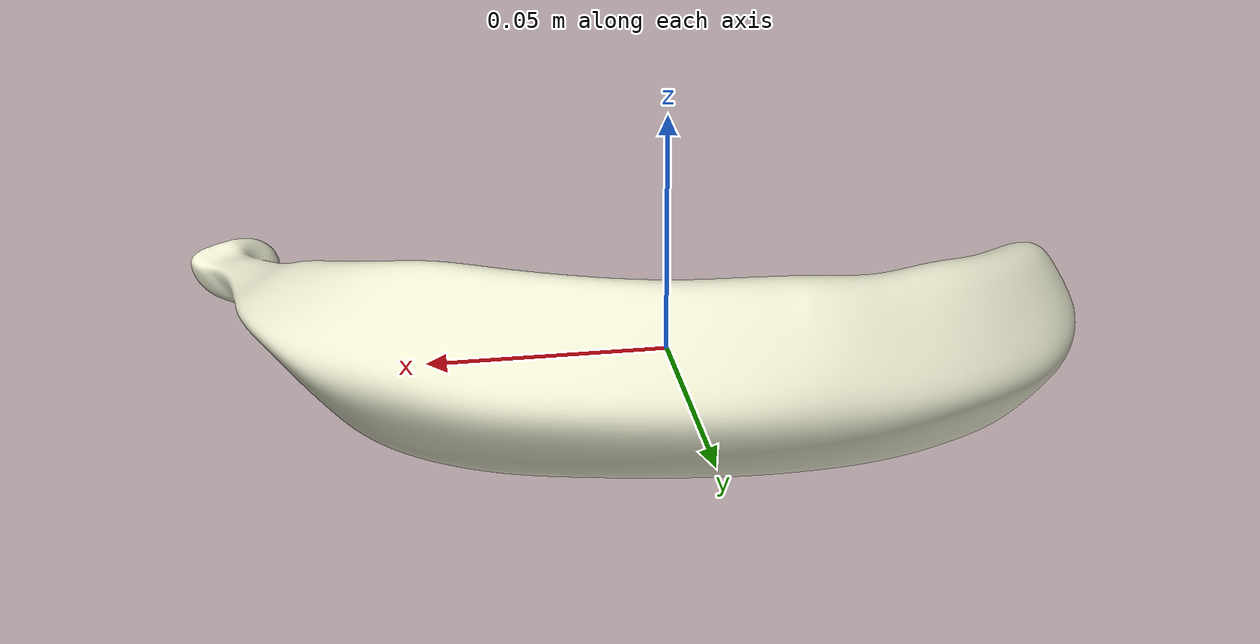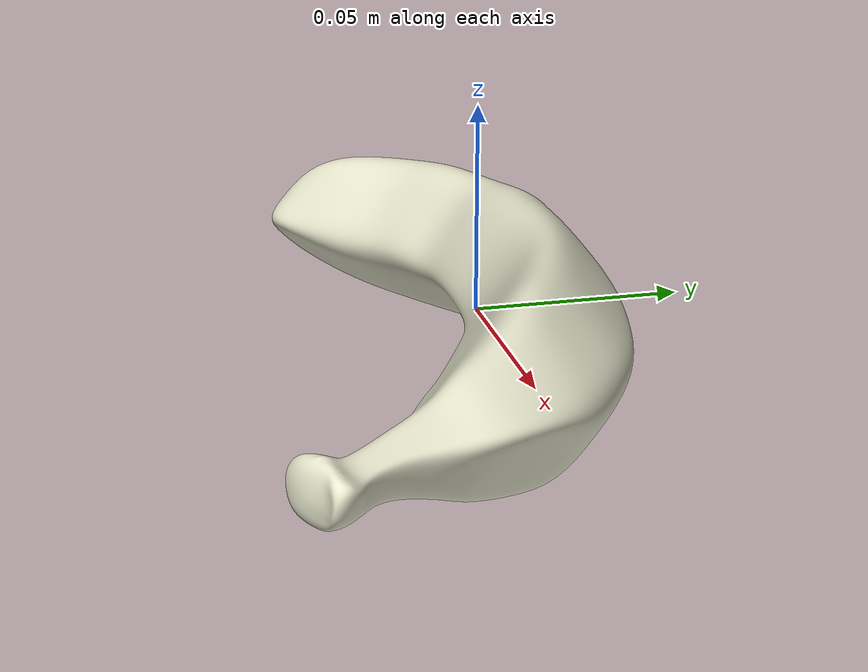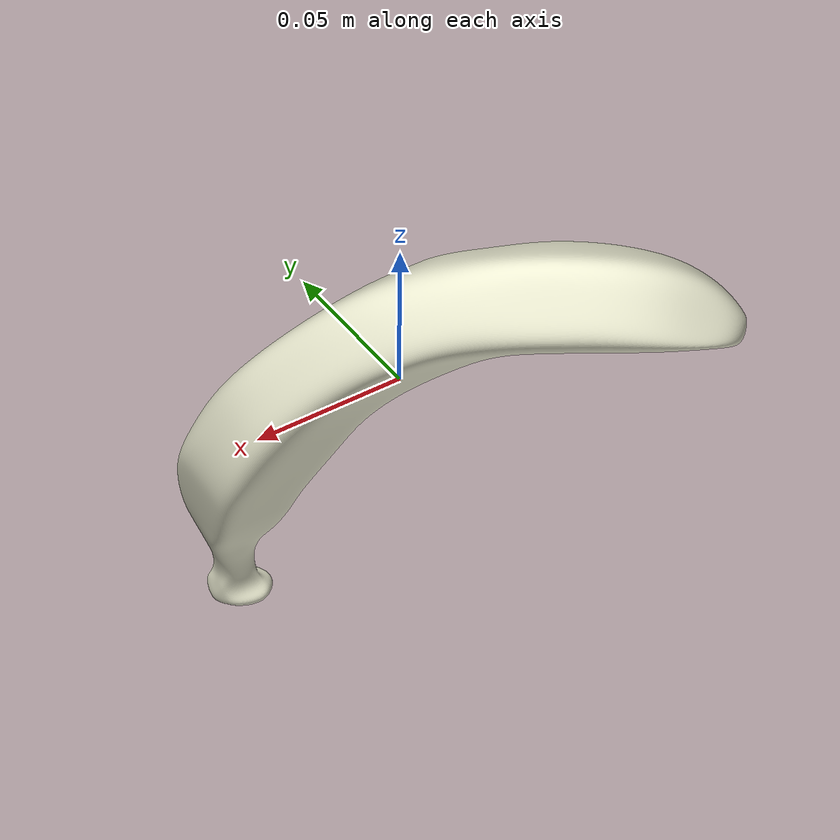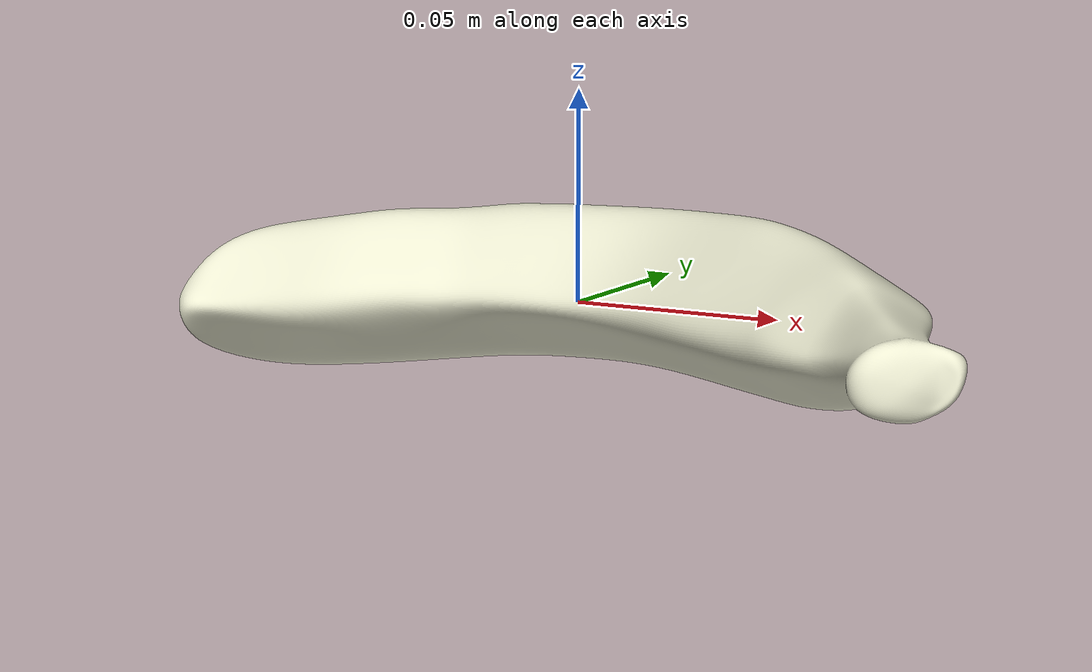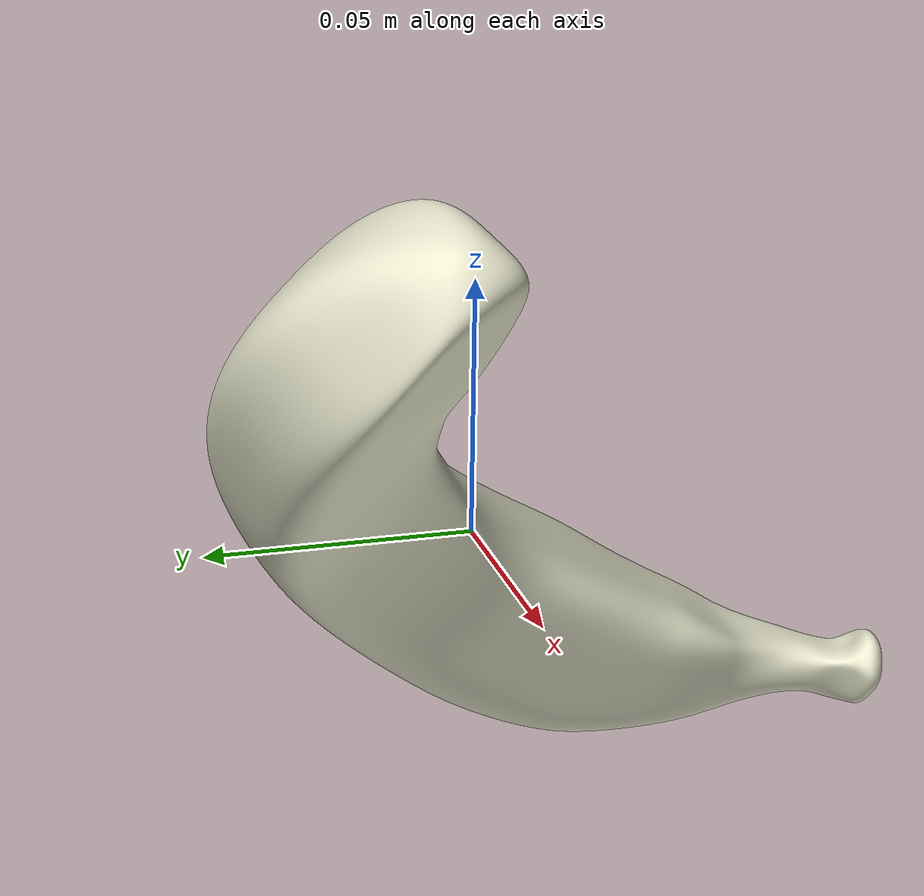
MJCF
<mujoco model="banana">
  <compiler meshdir="."/>

  <asset>
    <mesh name="banana" file="banana.stl"/>
  </asset>

  <worldbody>
    <body name="object">
      <freejoint name="object_joint"/>
      <geom name="object_visual" type="mesh" mesh="banana"
            contype="0" conaffinity="0" group="2" rgba="0.9 0.9 0.8 1" mass="0"/>
      <geom name="object_collision" type="mesh" mesh="banana"
            mass="0.0500" condim="6" friction="1.0 0.002 0.002" priority="1"/>
    </body>
  </worldbody>
</mujoco>
